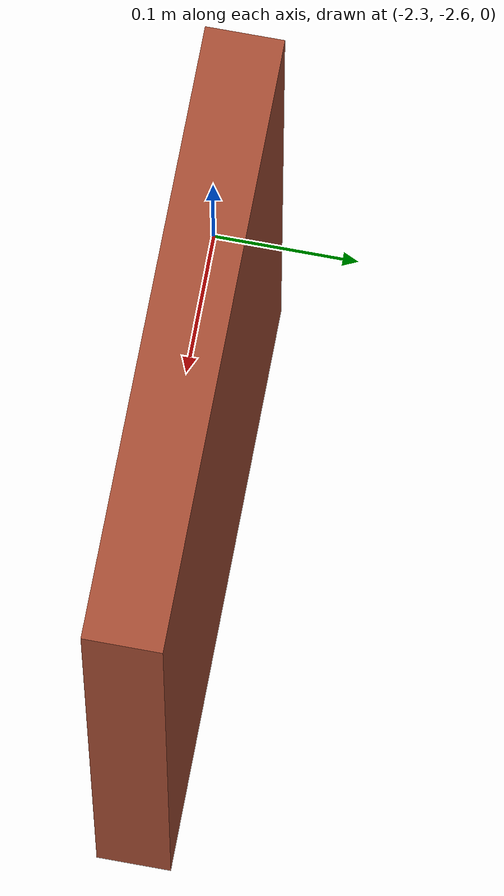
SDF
<?xml version='1.0'?>
<sdf version='1.6'>
  <model name='assgnmentDoor'>
    <pose frame=''>-2.055 -2.57 0 0 -0 0</pose>
    <link name='Wall_0'>
      <collision name='Wall_0_Collision'>
        <geometry>
          <box>
            <size>0.4 0.05 0.5</size>
          </box>
        </geometry>
        <pose frame=''>0 0 0.25 0 -0 0</pose>
      </collision>
      <visual name='Wall_0_Visual'>
        <pose frame=''>0 0 0.25 0 -0 0</pose>
        <geometry>
          <box>
            <size>0.4 0.05 0.5</size>
          </box>
        </geometry>
        <material>
          <script>
            <uri>file://media/materials/scripts/gazebo.material</uri>
            <name>Gazebo/Bricks</name>
          </script>
          <ambient>1 1 1 1</ambient>
        </material>
        <meta>
          <layer>0</layer>
        </meta>
      </visual>
      <pose frame=''>0 0 0 0 -0 0</pose>
    </link>
    <static>1</static>
  </model>
</sdf>
